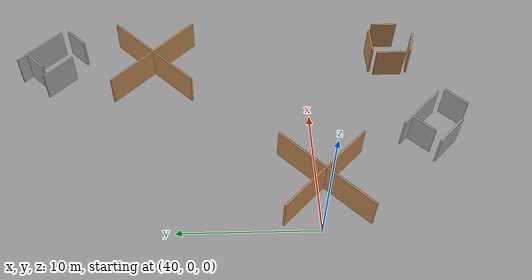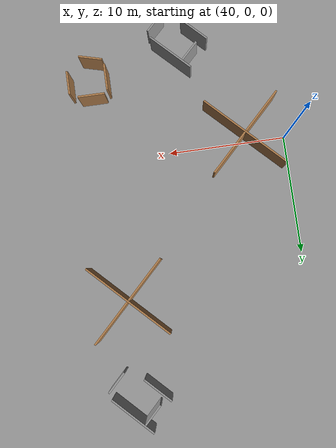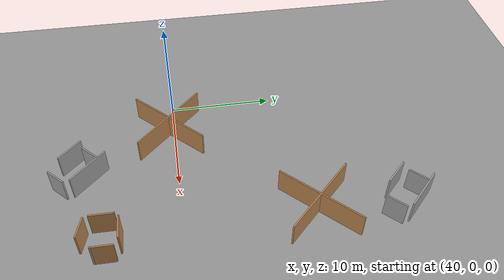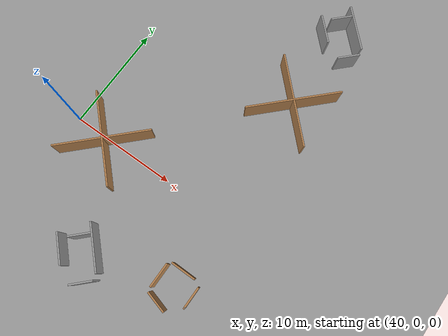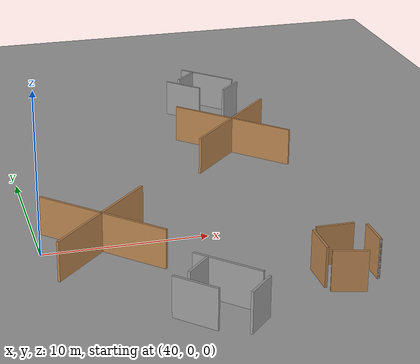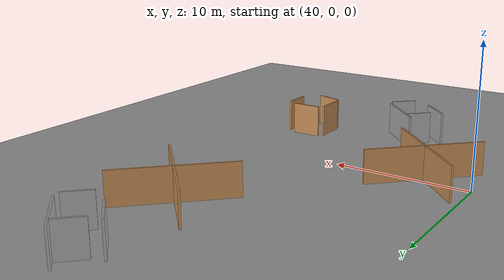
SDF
<sdf version="1.5">
 <world name="default">
  <model name="ground_plane">
   <static>1</static>
   <link name="link">
    <collision name="collision">
     <geometry><plane><normal>0 0 1</normal><size>100 100</size></plane></geometry>
     <surface><friction><ode><mu>100</mu><mu2>50</mu2></ode></friction></surface>
    </collision>
    <visual name="visual">
     <cast_shadows>0</cast_shadows>
     <geometry><plane><normal>0 0 1</normal><size>100 100</size></plane></geometry>
     <material>
      <script><uri>file://media/materials/scripts/gazebo.material</uri><name>Gazebo/Grey</name></script>
     </material>
    </visual>
   </link>
  </model>
  <model name="ground_plane_2">
   <static>1</static>
   <link name="link">
    <collision name="collision">
     <geometry><plane><normal>0 0 1</normal><size>100 100</size></plane></geometry>
     <surface><friction><ode><mu>100</mu><mu2>50</mu2></ode></friction></surface>
    </collision>
    <visual name="visual">
     <cast_shadows>0</cast_shadows>
     <geometry><plane><normal>0 0 1</normal><size>100 100</size></plane></geometry>
     <material>
      <script><uri>file://media/materials/scripts/gazebo.material</uri><name>Gazebo/Grey</name></script>
     </material>
    </visual>
   </link>
   <pose>46 12 0 0 -0 0</pose>
  </model>
  <model name="obs1_3">
   <pose>56 -7 0 0 -0 0</pose>
   <link name="Wall_10">
    <collision name="Wall_10_Collision">
     <geometry><box><size>2 0.15 2.5</size></box></geometry>
     <pose>0 0 1.25 0 -0 0</pose>
    </collision>
    <visual name="Wall_10_Visual">
     <pose>0 0 1.25 0 -0 0</pose>
     <geometry><box><size>2 0.15 2.5</size></box></geometry>
     <material>
      <script><uri>file://media/materials/scripts/gazebo.material</uri><name>Gazebo/Wood</name></script>
      <ambient>1 1 1 1</ambient>
     </material>
    </visual>
    <pose>-0.505188 -1.46687 0 0 0 -0.261799</pose>
   </link>
   <link name="Wall_2">
    <collision name="Wall_2_Collision">
     <geometry><box><size>2.25 0.15 2.5</size></box></geometry>
     <pose>0 0 1.25 0 -0 0</pose>
    </collision>
    <visual name="Wall_2_Visual">
     <pose>0 0 1.25 0 -0 0</pose>
     <geometry><box><size>2.25 0.15 2.5</size></box></geometry>
     <material>
      <script><uri>file://media/materials/scripts/gazebo.material</uri><name>Gazebo/Wood</name></script>
      <ambient>1 1 1 1</ambient>
     </material>
    </visual>
    <pose>-1.58039 0.313508 0 0 0 -1.5708</pose>
   </link>
   <link name="Wall_5">
    <collision name="Wall_5_Collision">
     <geometry><box><size>2.25 0.15 2.5</size></box></geometry>
     <pose>0 0 1.25 0 -0 0</pose>
    </collision>
    <visual name="Wall_5_Visual">
     <pose>0 0 1.25 0 -0 0</pose>
     <geometry><box><size>2.25 0.15 2.5</size></box></geometry>
     <material>
      <script><uri>file://media/materials/scripts/gazebo.material</uri><name>Gazebo/Wood</name></script>
      <ambient>1 1 1 1</ambient>
     </material>
    </visual>
    <pose>-0.185262 1.72313 0 0 -0 0</pose>
   </link>
   <link name="Wall_7">
    <collision name="Wall_7_Collision">
     <geometry><box><size>2 0.15 2.5</size></box></geometry>
     <pose>0 0 1.25 0 -0 0</pose>
    </collision>
    <visual name="Wall_7_Visual">
     <pose>0 0 1.25 0 -0 0</pose>
     <geometry><box><size>2 0.15 2.5</size></box></geometry>
     <material>
      <script><uri>file://media/materials/scripts/gazebo.material</uri><name>Gazebo/Wood</name></script>
      <ambient>1 1 1 1</ambient>
     </material>
    </visual>
    <pose>1.58039 0.398833 0 0 0 -1.5708</pose>
   </link>
   <link name="Wall_8">
    <collision name="Wall_8_Collision">
     <geometry><box><size>0.15 0.15 2.5</size></box></geometry>
     <pose>0 0 1.25 0 -0 0</pose>
    </collision>
    <visual name="Wall_8_Visual">
     <pose>0 0 1.25 0 -0 0</pose>
     <geometry><box><size>0.15 0.15 2.5</size></box></geometry>
     <material>
      <script><uri>file://media/materials/scripts/gazebo.material</uri><name>Gazebo/Grey</name></script>
      <ambient>1 1 1 1</ambient>
     </material>
    </visual>
    <pose>1.58039 -0.526167 0 0 -0 0</pose>
   </link>
   <static>1</static>
  </model>
  <model name="obs3_1">
   <pose>43.5414 -0.43425 0 0 -0 0</pose>
   <link name="Wall_0">
    <collision name="Wall_0_Collision">
     <geometry><box><size>8.63528 0.15 2.5</size></box></geometry>
     <pose>0 0 1.25 0 -0 0</pose>
    </collision>
    <visual name="Wall_0_Visual">
     <pose>0 0 1.25 0 -0 0</pose>
     <geometry><box><size>8.63528 0.15 2.5</size></box></geometry>
     <material>
      <script><uri>file://media/materials/scripts/gazebo.material</uri><name>Gazebo/Wood</name></script>
      <ambient>1 1 1 1</ambient>
     </material>
    </visual>
    <pose>0 0 0 0 0 -0.785398</pose>
   </link>
   <link name="Wall_2">
    <collision name="Wall_2_Collision">
     <geometry><box><size>8.63528 0.15 2.5</size></box></geometry>
     <pose>0 0 1.25 0 -0 0</pose>
    </collision>
    <visual name="Wall_2_Visual">
     <pose>0 0 1.25 0 -0 0</pose>
     <geometry><box><size>8.63528 0.15 2.5</size></box></geometry>
     <material>
      <script><uri>file://media/materials/scripts/gazebo.material</uri><name>Gazebo/Wood</name></script>
      <ambient>1 1 1 1</ambient>
     </material>
    </visual>
    <pose>0 0 0 0 0 -2.35619</pose>
   </link>
   <static>1</static>
  </model>
  <model name="obs3_2">
   <pose>55 12 0 0 -0 0</pose>
   <link name="Wall_0">
    <collision name="Wall_0_Collision">
     <geometry><box><size>8.63528 0.15 2.5</size></box></geometry>
     <pose>0 0 1.25 0 -0 0</pose>
    </collision>
    <visual name="Wall_0_Visual">
     <pose>0 0 1.25 0 -0 0</pose>
     <geometry><box><size>8.63528 0.15 2.5</size></box></geometry>
     <material>
      <script><uri>file://media/materials/scripts/gazebo.material</uri><name>Gazebo/Wood</name></script>
      <ambient>1 1 1 1</ambient>
     </material>
    </visual>
    <pose>0 0 0 0 0 -0.785398</pose>
   </link>
   <link name="Wall_2">
    <collision name="Wall_2_Collision">
     <geometry><box><size>8.63528 0.15 2.5</size></box></geometry>
     <pose>0 0 1.25 0 -0 0</pose>
    </collision>
    <visual name="Wall_2_Visual">
     <pose>0 0 1.25 0 -0 0</pose>
     <geometry><box><size>8.63528 0.15 2.5</size></box></geometry>
     <material>
      <script><uri>file://media/materials/scripts/gazebo.material</uri><name>Gazebo/Wood</name></script>
      <ambient>1 1 1 1</ambient>
     </material>
    </visual>
    <pose>0 0 0 0 0 -2.35619</pose>
   </link>
   <static>1</static>
  </model>
  <model name="obs2_4">
   <pose>55 20 0 0 -0 0</pose>
   <link name="Wall_0">
    <collision name="Wall_0_Collision">
     <geometry><box><size>2 0.15 2.5</size></box></geometry>
     <pose>0 0 1.25 0 -0 0</pose>
    </collision>
    <visual name="Wall_0_Visual">
     <pose>0 0 1.25 0 -0 0</pose>
     <geometry><box><size>2 0.15 2.5</size></box></geometry>
     <material>
      <script><uri>file://media/materials/scripts/gazebo.material</uri><name>Gazebo/Grey</name></script>
      <ambient>1 1 1 1</ambient>
     </material>
    </visual>
    <pose>-0.796332 1.10862 0 0 -0 0.785398</pose>
   </link>
   <link name="Wall_2">
    <collision name="Wall_2_Collision">
     <geometry><box><size>4.25 0.15 2.5</size></box></geometry>
     <pose>0 0 1.25 0 -0 0</pose>
    </collision>
    <visual name="Wall_2_Visual">
     <pose>0 0 1.25 0 -0 0</pose>
     <geometry><box><size>4.25 0.15 2.5</size></box></geometry>
     <material>
      <script><uri>file://media/materials/scripts/gazebo.material</uri><name>Gazebo/Grey</name></script>
      <ambient>1 1 1 1</ambient>
     </material>
    </visual>
    <pose>0.773928 0.982661 0 0 0 -0.785398</pose>
   </link>
   <link name="Wall_4">
    <collision name="Wall_4_Collision">
     <geometry><box><size>2.75 0.15 2.5</size></box></geometry>
     <pose>0 0 1.25 0 -0 0</pose>
    </collision>
    <visual name="Wall_4_Visual">
     <pose>0 0 1.25 0 -0 0</pose>
     <geometry><box><size>2.75 0.15 2.5</size></box></geometry>
     <material>
      <script><uri>file://media/materials/scripts/gazebo.material</uri><name>Gazebo/Grey</name></script>
      <ambient>1 1 1 1</ambient>
     </material>
    </visual>
    <pose>-1.45556 -0.740711 0 0 0 -0.785398</pose>
   </link>
   <link name="Wall_6">
    <collision name="Wall_6_Collision">
     <geometry><box><size>2 0.15 2.5</size></box></geometry>
     <pose>0 0 1.25 0 -0 0</pose>
    </collision>
    <visual name="Wall_6_Visual">
     <pose>0 0 1.25 0 -0 0</pose>
     <geometry><box><size>2 0.15 2.5</size></box></geometry>
     <material>
      <script><uri>file://media/materials/scripts/gazebo.material</uri><name>Gazebo/Grey</name></script>
      <ambient>1 1 1 1</ambient>
     </material>
    </visual>
    <pose>1.72073 -1.77816 0 0 -0 0.785398</pose>
   </link>
   <static>1</static>
  </model>
  <model name="obs2_5">
   <pose>48 -9 0 0 -0 0</pose>
   <link name="Wall_0">
    <collision name="Wall_0_Collision">
     <geometry><box><size>2 0.15 2.5</size></box></geometry>
     <pose>0 0 1.25 0 -0 0</pose>
    </collision>
    <visual name="Wall_0_Visual">
     <pose>0 0 1.25 0 -0 0</pose>
     <geometry><box><size>2 0.15 2.5</size></box></geometry>
     <material>
      <script><uri>file://media/materials/scripts/gazebo.material</uri><name>Gazebo/Grey</name></script>
      <ambient>1 1 1 1</ambient>
     </material>
    </visual>
    <pose>-0.796332 1.10862 0 0 -0 0.785398</pose>
   </link>
   <link name="Wall_2">
    <collision name="Wall_2_Collision">
     <geometry><box><size>4.25 0.15 2.5</size></box></geometry>
     <pose>0 0 1.25 0 -0 0</pose>
    </collision>
    <visual name="Wall_2_Visual">
     <pose>0 0 1.25 0 -0 0</pose>
     <geometry><box><size>4.25 0.15 2.5</size></box></geometry>
     <material>
      <script><uri>file://media/materials/scripts/gazebo.material</uri><name>Gazebo/Grey</name></script>
      <ambient>1 1 1 1</ambient>
     </material>
    </visual>
    <pose>0.773928 0.982661 0 0 0 -0.785398</pose>
   </link>
   <link name="Wall_4">
    <collision name="Wall_4_Collision">
     <geometry><box><size>2.75 0.15 2.5</size></box></geometry>
     <pose>0 0 1.25 0 -0 0</pose>
    </collision>
    <visual name="Wall_4_Visual">
     <pose>0 0 1.25 0 -0 0</pose>
     <geometry><box><size>2.75 0.15 2.5</size></box></geometry>
     <material>
      <script><uri>file://media/materials/scripts/gazebo.material</uri><name>Gazebo/Grey</name></script>
      <ambient>1 1 1 1</ambient>
     </material>
    </visual>
    <pose>-1.45556 -0.740711 0 0 0 -0.785398</pose>
   </link>
   <link name="Wall_6">
    <collision name="Wall_6_Collision">
     <geometry><box><size>2 0.15 2.5</size></box></geometry>
     <pose>0 0 1.25 0 -0 0</pose>
    </collision>
    <visual name="Wall_6_Visual">
     <pose>0 0 1.25 0 -0 0</pose>
     <geometry><box><size>2 0.15 2.5</size></box></geometry>
     <material>
      <script><uri>file://media/materials/scripts/gazebo.material</uri><name>Gazebo/Grey</name></script>
      <ambient>1 1 1 1</ambient>
     </material>
    </visual>
    <pose>1.72073 -1.77816 0 0 -0 0.785398</pose>
   </link>
   <static>1</static>
  </model>
 </world>
</sdf>
